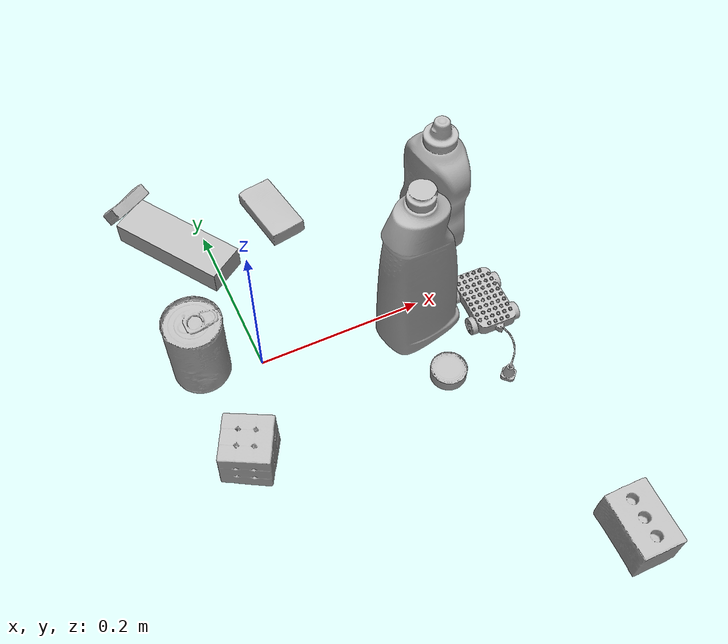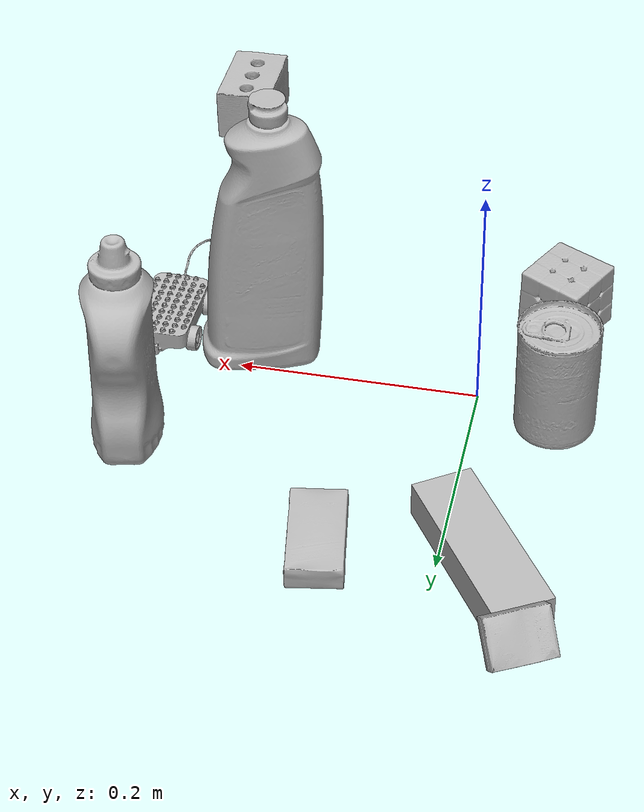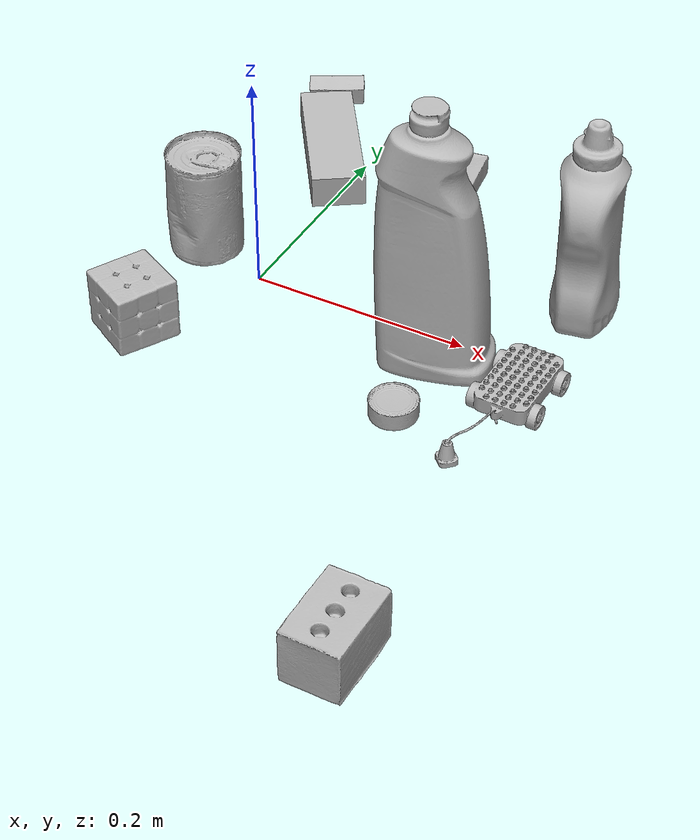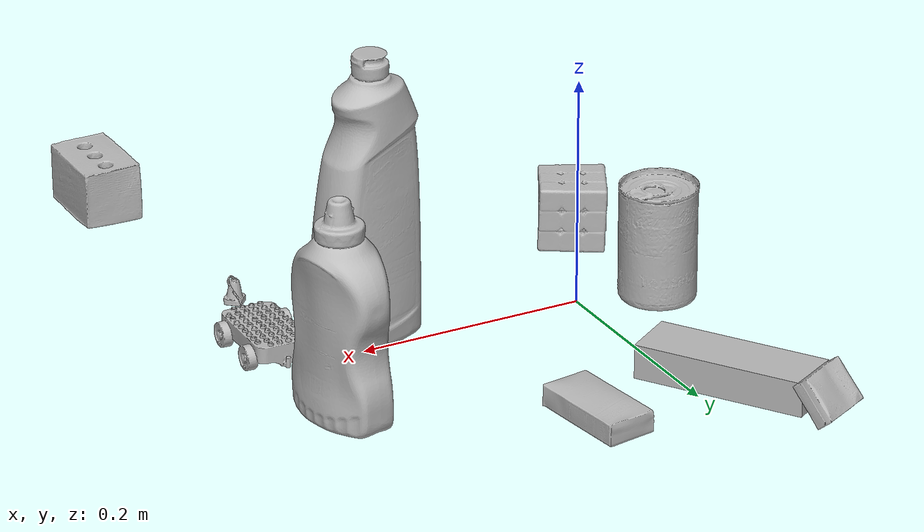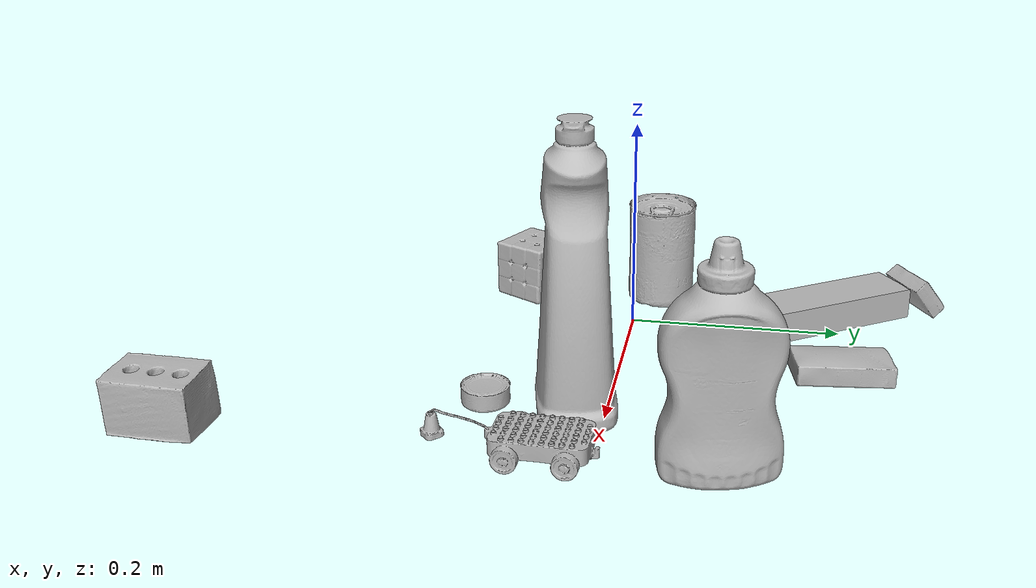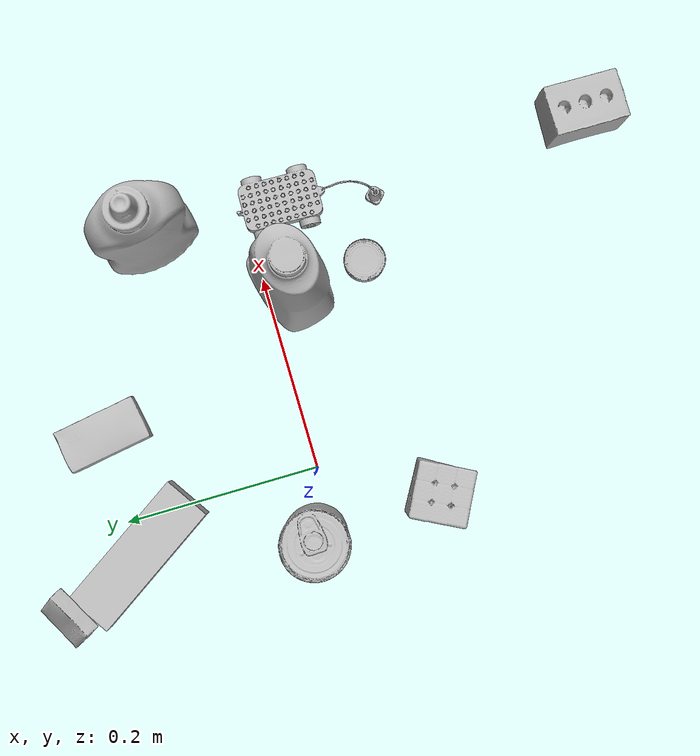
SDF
<sdf version="1.4">
  <world name="default">
    <light name="light1" type="point">
      <pose>0 0 1 0 0 0</pose>
      <diffuse>3 3 3 1</diffuse>
      <specular>3 3 3 1</specular>
    </light>
    <light name="light2" type="point">
      <pose>0 0.5 2 0 0 0</pose>
      <diffuse>1 1 1 1</diffuse>
      <specular>1 1 1 1</specular>
    </light>
    <light name="light3" type="point">
      <pose>0 0.5 2 0 0 0</pose>
      <diffuse>3 3 3 1</diffuse>
      <specular>3 3 3 1</specular>
    </light>
    <scene>
      <ambient>0.7 0.7 0.7</ambient>
    </scene>
    <model name="bottle1">
      <link name="link_bottle1">
        <collision name="default">
          <geometry>
            <mesh>
              <uri>model://bleach_cleanser/collision_meshes/collision.obj</uri>
              <scale>1.0 1.0 1.0</scale>
            </mesh>
          </geometry>
          <surface>
            <friction>
              <ode>
                <mu>0.5</mu>
                <mu2>0.5</mu2>
              </ode>
            </friction>
          <contact>
        <ode>
            <max_vel>0</max_vel>
            <min_depth>0.0001</min_depth>
            <kp>1e8</kp>
        </ode>
    </contact></surface>
        </collision>
        <visual name="default">
          <geometry>
            <mesh>
              <uri>model://bleach_cleanser/visual_meshes/visual.dae</uri>
              <scale>1.0 1.0 1.0</scale>
            </mesh>
          </geometry>
        </visual>
        <inertial>
          <mass>1.2697166204452515</mass>
          <pose>0.00012193183647468686 0.003783883061259985 -0.02442161738872528 -0.07381670616315505 0.00042011510954057825 -0.0068750724928957506</pose>
          <inertia>
            <ixx>0.0061798943</ixx>
            <iyy>0.0057587572</iyy>
            <izz>0.0010566014</izz>
            <ixy>0</ixy>
            <ixz>0</ixz>
            <iyz>0</iyz>
          </inertia>
        </inertial>
      </link>
      <pose>0.18645566701889038 -0.026951948180794716 0.12577681243419647 -0.0005450580611369531 0.0006690649675308146 1.8272970501838872</pose>
    </model>
    <model name="bottle2">
      <link name="link_bottle2">
        <collision name="default">
          <geometry>
            <mesh>
              <uri>model://mustard_bottle/collision_meshes/collision.obj</uri>
              <scale>1.0 1.0 1.0</scale>
            </mesh>
          </geometry>
          <surface>
            <friction>
              <ode>
                <mu>0.5</mu>
                <mu2>0.5</mu2>
              </ode>
            </friction>
          <contact>
        <ode>
            <max_vel>0</max_vel>
            <min_depth>0.0001</min_depth>
            <kp>1e8</kp>
        </ode>
    </contact></surface>
        </collision>
        <visual name="default">
          <geometry>
            <mesh>
              <uri>model://mustard_bottle/visual_meshes/visual.dae</uri>
              <scale>1.0 1.0 1.0</scale>
            </mesh>
          </geometry>
        </visual>
        <inertial>
          <mass>0.7653017640113831</mass>
          <pose>0.000503245391882956 -0.00015647402324248105 -0.01747579500079155 0.0004182327658992807 0.0009465785893850277 0.024853714910462506</pose>
          <inertia>
            <ixx>0.0021251384</ixx>
            <iyy>0.0018646289</iyy>
            <izz>0.0005600813</izz>
            <ixy>0</ixy>
            <ixz>0</ixz>
            <iyz>0</iyz>
          </inertia>
        </inertial>
      </link>
      <pose>0.2706206142902374 0.09686072915792465 0.09583090245723724 -0.012050385489195879 -0.004890192663604969 -2.9617338269795668</pose>
    </model>
    <model name="toy1">
      <link name="link_toy1">
        <collision name="default">
          <geometry>
            <mesh>
              <uri>model://g_lego_duplo/collision_meshes/collision.obj</uri>
              <scale>0.5 0.5 0.5</scale>
            </mesh>
          </geometry>
          <surface>
            <friction>
              <ode>
                <mu>0.5</mu>
                <mu2>0.5</mu2>
              </ode>
            </friction>
          <contact>
        <ode>
            <max_vel>0</max_vel>
            <min_depth>0.0001</min_depth>
            <kp>1e8</kp>
        </ode>
    </contact></surface>
        </collision>
        <visual name="default">
          <geometry>
            <mesh>
              <uri>model://g_lego_duplo/visual_meshes/visual.dae</uri>
              <scale>0.5 0.5 0.5</scale>
            </mesh>
          </geometry>
        </visual>
        <inertial>
          <mass>0.058442164212465286</mass>
          <pose>-0.025023842230439186 0.0008777315961197019 0.0019403378246352077 0.010962970283690966 0.0381082459421261 -0.09653034831594848</pose>
          <inertia>
            <ixx>2.1170836e-05</ixx>
            <iyy>6.4006235e-05</iyy>
            <izz>8.007422e-05</izz>
            <ixy>0</ixy>
            <ixz>0</ixz>
            <iyz>0</iyz>
          </inertia>
        </inertial>
      </link>
      <pose>0.26722538471221924 -0.06916261464357376 0.014971641823649406 -0.00012249175129731035 -0.003701627107966434 -1.6024855983007584</pose>
    </model>
    <model name="toy2">
      <link name="link_toy2">
        <collision name="default">
          <geometry>
            <mesh>
              <uri>model://foam_brick/collision_meshes/collision.obj</uri>
              <scale>1.0 1.0 1.0</scale>
            </mesh>
          </geometry>
          <surface>
            <friction>
              <ode>
                <mu>0.5</mu>
                <mu2>0.5</mu2>
              </ode>
            </friction>
          <contact>
        <ode>
            <max_vel>0</max_vel>
            <min_depth>0.0001</min_depth>
            <kp>1e8</kp>
        </ode>
    </contact></surface>
        </collision>
        <visual name="default">
          <geometry>
            <mesh>
              <uri>model://foam_brick/visual_meshes/visual.dae</uri>
              <scale>1.0 1.0 1.0</scale>
            </mesh>
          </geometry>
        </visual>
        <inertial>
          <mass>0.20487983524799347</mass>
          <pose>-0.0002522472059354186 0.0003458437859080732 -0.0002532101352699101 -0.2940200921298176 0.01727444945267686 -0.0007449878655710941</pose>
          <inertia>
            <ixx>8.9495355e-05</ixx>
            <iyy>0.0001428839</iyy>
            <izz>0.00014469978</izz>
            <ixy>0</ixy>
            <ixz>0</ixz>
            <iyz>0</iyz>
          </inertia>
        </inertial>
      </link>
      <pose>0.2743101119995117 -0.35743144154548645 0.02592279575765133 0.013417009216144306 0.004152441367591707 1.5597737901805147</pose>
    </model>
    <model name="can1">
      <link name="link_can1">
        <collision name="default">
          <geometry>
            <mesh>
              <uri>model://tuna_fish_can/collision_meshes/collision.obj</uri>
              <scale>0.5 0.5 0.5</scale>
            </mesh>
          </geometry>
          <surface>
            <friction>
              <ode>
                <mu>0.5</mu>
                <mu2>0.5</mu2>
              </ode>
            </friction>
          <contact>
        <ode>
            <max_vel>0</max_vel>
            <min_depth>0.0001</min_depth>
            <kp>1e8</kp>
        </ode>
    </contact></surface>
        </collision>
        <visual name="default">
          <geometry>
            <mesh>
              <uri>model://tuna_fish_can/visual_meshes/visual.dae</uri>
              <scale>0.5 0.5 0.5</scale>
            </mesh>
          </geometry>
        </visual>
        <inertial>
          <mass>0.012491201050579548</mass>
          <pose>-2.036202567978762e-05 -7.256427124957554e-06 -0.0005269025568850338 -0.0017944782936896576 0.0001716245920406042 0.24054207470378652</pose>
          <inertia>
            <ixx>1.6888293e-06</ixx>
            <iyy>1.6817903e-06</iyy>
            <izz>2.889828e-06</izz>
            <ixy>0</ixy>
            <ixz>0</ixz>
            <iyz>0</iyz>
          </inertia>
        </inertial>
      </link>
      <pose>0.1888570785522461 -0.1047162190079689 0.008520000614225864 -5.568273154549158e-09 1.0526098627911191e-08 1.6872282826576857</pose>
    </model>
    <model name="can2">
      <link name="link_can2">
        <collision name="default">
          <geometry>
            <mesh>
              <uri>model://tomato_soup_can/collision_meshes/collision.obj</uri>
              <scale>1.0 1.0 1.0</scale>
            </mesh>
          </geometry>
          <surface>
            <friction>
              <ode>
                <mu>0.5</mu>
                <mu2>0.5</mu2>
              </ode>
            </friction>
          <contact>
        <ode>
            <max_vel>0</max_vel>
            <min_depth>0.0001</min_depth>
            <kp>1e8</kp>
        </ode>
    </contact></surface>
        </collision>
        <visual name="default">
          <geometry>
            <mesh>
              <uri>model://tomato_soup_can/visual_meshes/visual.dae</uri>
              <scale>1.0 1.0 1.0</scale>
            </mesh>
          </geometry>
        </visual>
        <inertial>
          <mass>0.1827235370874405</mass>
          <pose>0.00012652271834667772 0.00010805515921674669 -0.0017973986687138677 0.007020070640758328 0.00042299385100205743 -0.009903366123441316</pose>
          <inertia>
            <ixx>0.00020034082</ixx>
            <iyy>0.00019918295</iyy>
            <izz>0.00010383482</izz>
            <ixy>0</ixy>
            <ixz>0</ixz>
            <iyz>0</iyz>
          </inertia>
        </inertial>
      </link>
      <pose>-0.06564857065677643 0.020336352288722992 0.05127400904893875 -8.71769664427537e-08 -1.4794146655352805e-07 1.3257120760176413</pose>
    </model>
    <model name="box1">
      <link name="link_box1">
        <collision name="default">
          <geometry>
            <mesh>
              <uri>model://jenga/collision_meshes/collision.obj</uri>
              <scale>1.0 1.0 1.0</scale>
            </mesh>
          </geometry>
          <surface>
            <friction>
              <ode>
                <mu>0.5</mu>
                <mu2>0.5</mu2>
              </ode>
            </friction>
          <contact>
        <ode>
            <max_vel>0</max_vel>
            <min_depth>0.0001</min_depth>
            <kp>1e8</kp>
        </ode>
    </contact></surface>
        </collision>
        <visual name="default">
          <geometry>
            <mesh>
              <uri>model://jenga/visual_meshes/visual.dae</uri>
              <scale>1.0 1.0 1.0</scale>
            </mesh>
          </geometry>
        </visual>
        <inertial>
          <mass>0.23032541573047638</mass>
          <pose>-2.502855807051674e-07 -0.00010250010382151231 -4.0923401684267446e-05 0.0 -7.342154049184251e-07 0.0</pose>
          <inertia>
            <ixx>6.3736625e-05</ixx>
            <iyy>0.00043187768</iyy>
            <izz>0.00046106614</izz>
            <ixy>0</ixy>
            <ixz>0</ixz>
            <iyz>0</iyz>
          </inertia>
        </inertial>
      </link>
      <pose>-0.03345637768507004 0.19452355802059174 0.014999979175627232 -1.4112551346809984e-06 -2.6080347388702385e-08 -0.9842686899961719</pose>
    </model>
    <model name="box2">
      <link name="link_box2">
        <collision name="default">
          <geometry>
            <mesh>
              <uri>model://cracker_box/collision_meshes/collision.obj</uri>
              <scale>0.25 0.25 0.25</scale>
            </mesh>
          </geometry>
          <surface>
            <friction>
              <ode>
                <mu>0.5</mu>
                <mu2>0.5</mu2>
              </ode>
            </friction>
          <contact>
        <ode>
            <max_vel>0</max_vel>
            <min_depth>0.0001</min_depth>
            <kp>1e8</kp>
        </ode>
    </contact></surface>
        </collision>
        <visual name="default">
          <geometry>
            <mesh>
              <uri>model://cracker_box/visual_meshes/visual.dae</uri>
              <scale>0.25 0.25 0.25</scale>
            </mesh>
          </geometry>
        </visual>
        <inertial>
          <mass>0.037928901612758636</mass>
          <pose>0.0002366034168517217 6.358561222441494e-05 -0.000425738311605528 -0.00031620771242973385 -0.011106489600347247 0.002546794536796529</pose>
          <inertia>
            <ixx>6.029637e-06</ixx>
            <iyy>9.956116e-06</iyy>
            <izz>1.420829e-05</izz>
            <ixy>0</ixy>
            <ixz>0</ixz>
            <iyz>0</iyz>
          </inertia>
        </inertial>
      </link>
      <pose>-0.07409000396728516 0.27826040983200073 0.021153368055820465 -0.905536072517582 0.005178686916962373 0.4893272503077632</pose>
    </model>
    <model name="box3">
      <link name="link_box3">
        <collision name="default">
          <geometry>
            <mesh>
              <uri>model://sugar_box/collision_meshes/collision.obj</uri>
              <scale>0.5 0.5 0.5</scale>
            </mesh>
          </geometry>
          <surface>
            <friction>
              <ode>
                <mu>0.5</mu>
                <mu2>0.5</mu2>
              </ode>
            </friction>
          <contact>
        <ode>
            <max_vel>0</max_vel>
            <min_depth>0.0001</min_depth>
            <kp>1e8</kp>
        </ode>
    </contact></surface>
        </collision>
        <visual name="default">
          <geometry>
            <mesh>
              <uri>model://sugar_box/visual_meshes/visual.dae</uri>
              <scale>0.5 0.5 0.5</scale>
            </mesh>
          </geometry>
        </visual>
        <inertial>
          <mass>0.11577744781970978</mass>
          <pose>0.0005171863595023751 1.9245549992774613e-05 -0.00018182402709499002 -0.0004046260967602003 0.0010506636382171825 0.002615378323343388</pose>
          <inertia>
            <ixx>2.4116362e-05</ixx>
            <iyy>7.7949044e-05</iyy>
            <izz>9.3314295e-05</izz>
            <ixy>0</ixy>
            <ixz>0</ixz>
            <iyz>0</iyz>
          </inertia>
        </inertial>
      </link>
      <pose>0.09223198890686035 0.19851885735988617 0.011399315670132637 0.0007751366855184095 -0.023432557512659706 -1.4108980336602115</pose>
    </model>
    <model name="box4">
      <link name="link_box4">
        <collision name="default">
          <geometry>
            <mesh>
              <uri>model://rubiks_cube/collision_meshes/collision.obj</uri>
              <scale>1.0 1.0 1.0</scale>
            </mesh>
          </geometry>
          <surface>
            <friction>
              <ode>
                <mu>0.5</mu>
                <mu2>0.5</mu2>
              </ode>
            </friction>
          <contact>
        <ode>
            <max_vel>0</max_vel>
            <min_depth>0.0001</min_depth>
            <kp>1e8</kp>
        </ode>
    </contact></surface>
        </collision>
        <visual name="default">
          <geometry>
            <mesh>
              <uri>model://rubiks_cube/visual_meshes/visual.dae</uri>
              <scale>1.0 1.0 1.0</scale>
            </mesh>
          </geometry>
        </visual>
        <inertial>
          <mass>0.277982622385025</mass>
          <pose>2.6721041649580002e-05 5.2569666877388954e-05 -7.264316082000732e-06 -0.05467259342135701 -0.09814005995908277 -0.03445491653702878</pose>
          <inertia>
            <ixx>0.00015360407</ixx>
            <iyy>0.00015288773</iyy>
            <izz>0.00015487692</izz>
            <ixy>0</ixy>
            <ixz>0</ixz>
            <iyz>0</iyz>
          </inertia>
        </inertial>
      </link>
      <pose>-0.05751229450106621 -0.11052834987640381 0.028678929433226585 -5.1539840655229025e-06 -2.015677960930867e-06 -2.0602752877591386</pose>
    </model>
  <physics type="ode">
      <max_contacts>50</max_contacts>
      <ode>
        <solver>
          <type>quick</type>
          <iters>75</iters>
        </solver>
        <constraints>
          <contact_max_correcting_vel>0</contact_max_correcting_vel>
          <contact_surface_layer>0</contact_surface_layer>
        </constraints>
      </ode>
    </physics></world>
</sdf>
